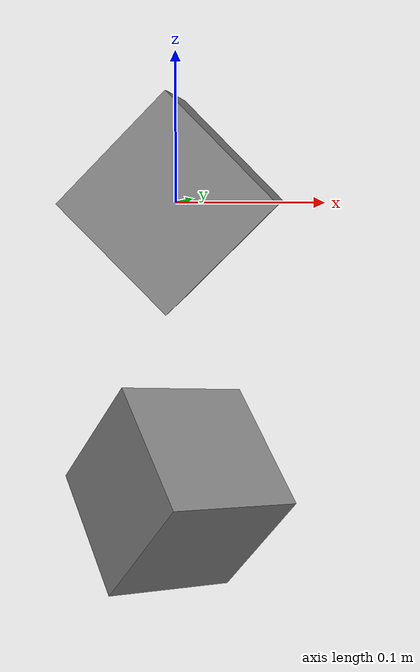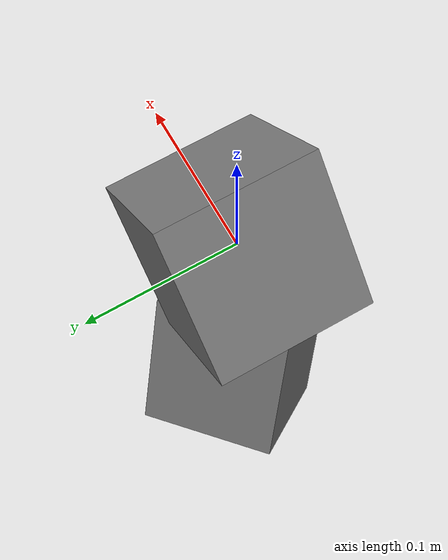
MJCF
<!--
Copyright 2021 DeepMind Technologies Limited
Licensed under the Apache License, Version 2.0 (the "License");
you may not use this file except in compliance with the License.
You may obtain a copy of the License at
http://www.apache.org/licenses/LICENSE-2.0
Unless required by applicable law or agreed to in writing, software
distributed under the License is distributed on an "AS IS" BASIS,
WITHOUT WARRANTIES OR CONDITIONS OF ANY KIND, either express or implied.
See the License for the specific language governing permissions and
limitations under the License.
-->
<mujoco>
  <!--
  body2 is held by body1 through the weld constraint, so the force sensor on body1
  should register -2*gravity (for the weight of both bodies).
  -->
  <option gravity="0 0 -1"/>

  <default>
    <!-- A cube of size 0.1^3 with density of 1000 has mass of 1. -->
    <geom size="0.05 0.05 0.05" type="box"/>
  </default>

  <worldbody>
    <body name="body1" euler="0 45 0">
      <geom/>
      <site name="sensor" euler="0 0 90"/>
    </body>
    <body name="body2" pos="0 0 -.2" euler="30 30 30">
      <joint type="free"/>
      <geom/>
    </body>
  </worldbody>

  <equality>
    <weld body1="body1" body2="body2"/>
  </equality>

  <sensor>
    <force site="sensor" user="0 1.41421356237 1.41421356237"/>
    <torque site="sensor" user="0 0 0"/>
  </sensor>
</mujoco>
